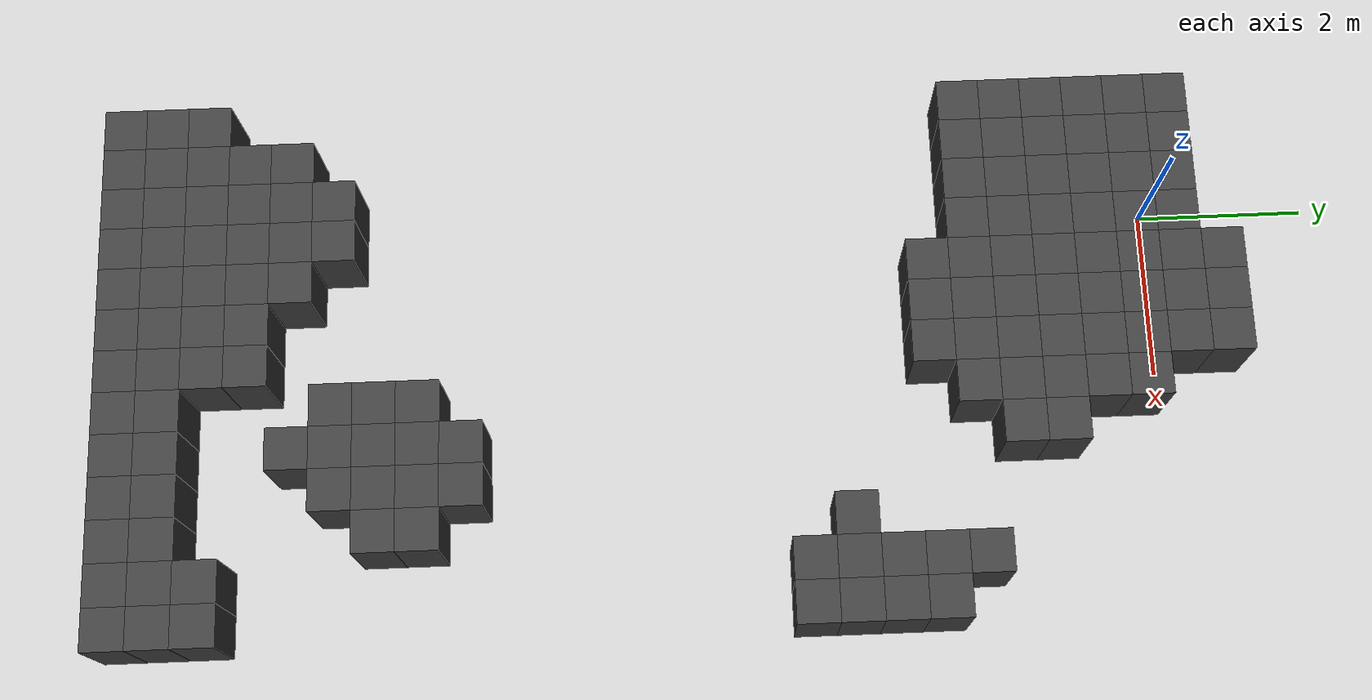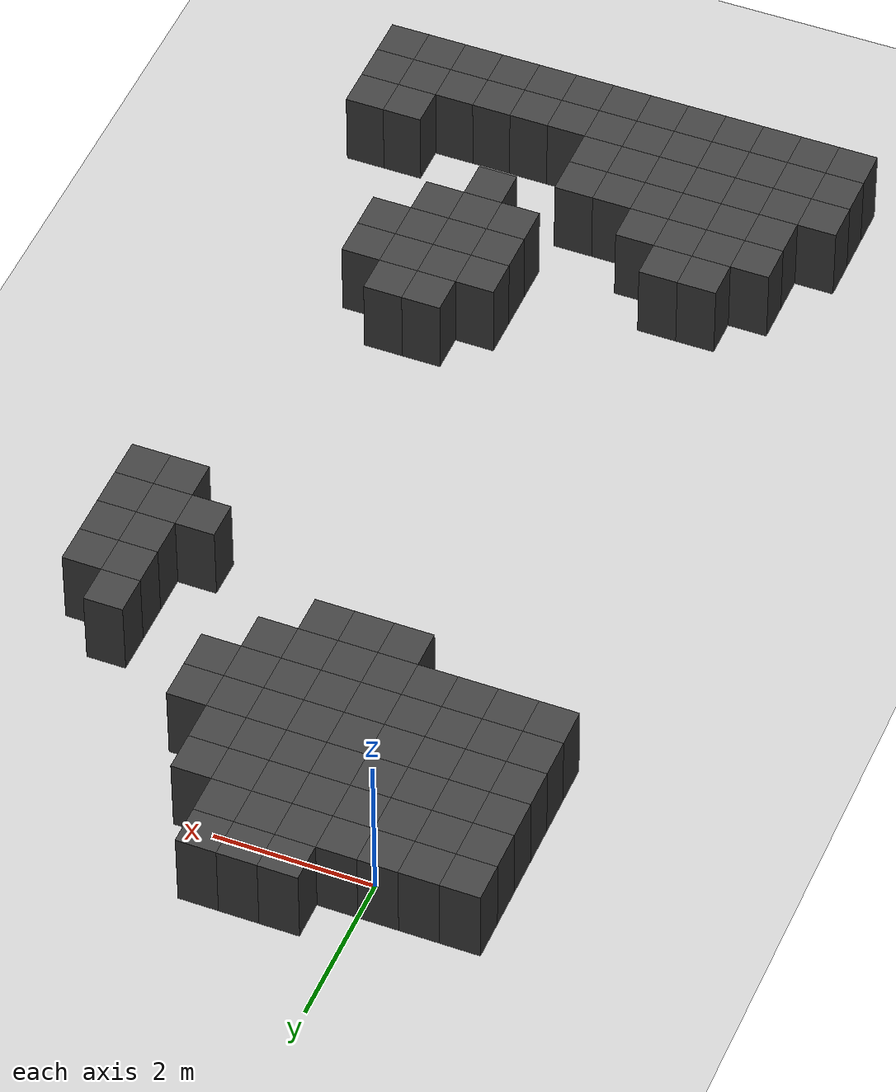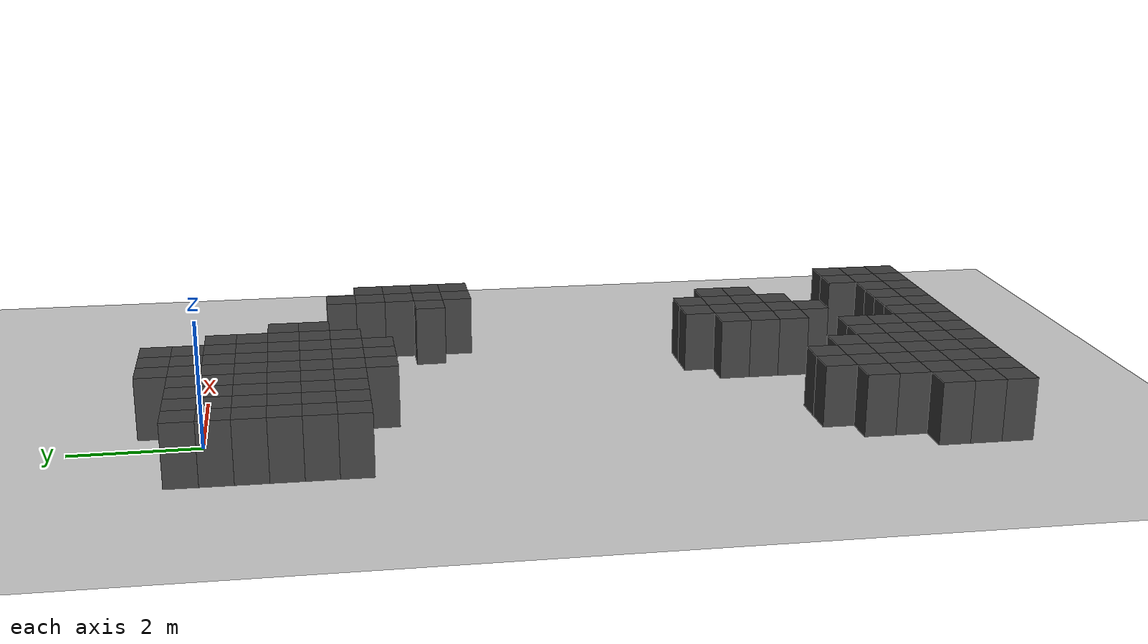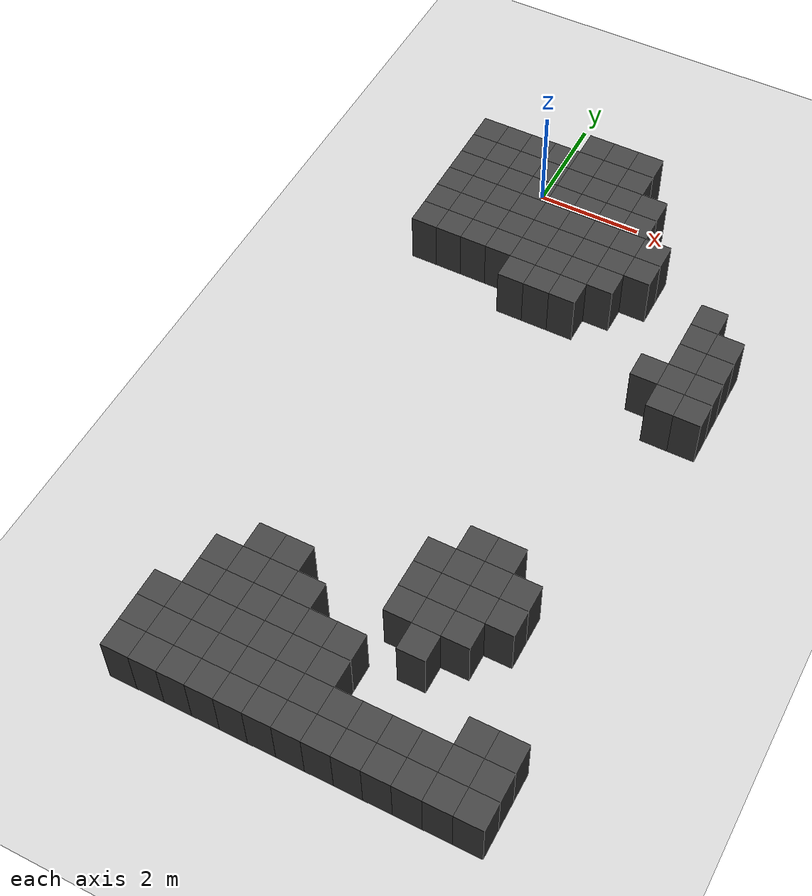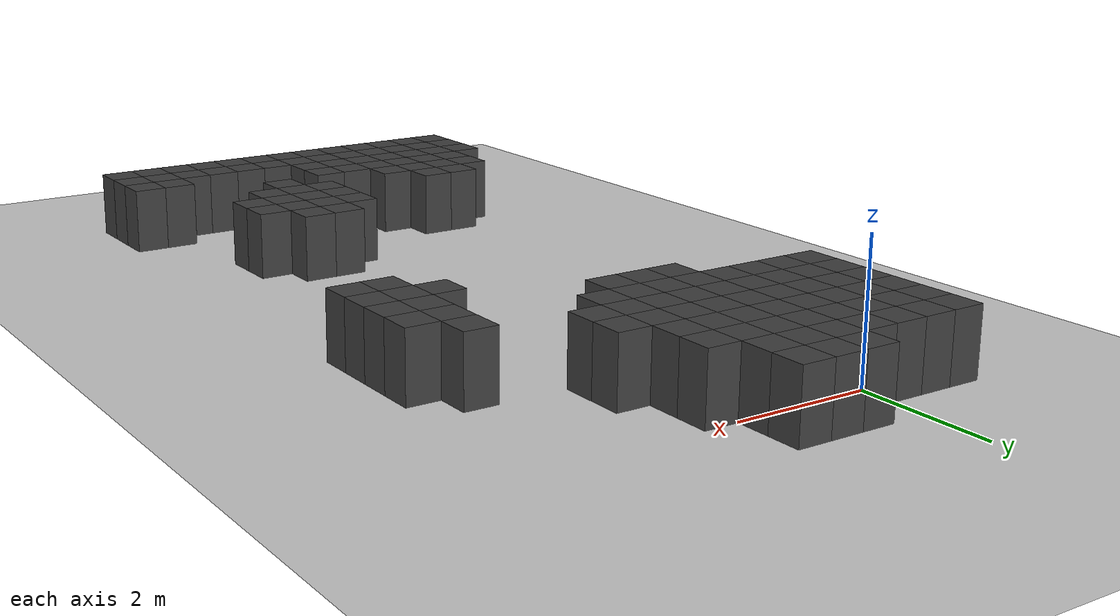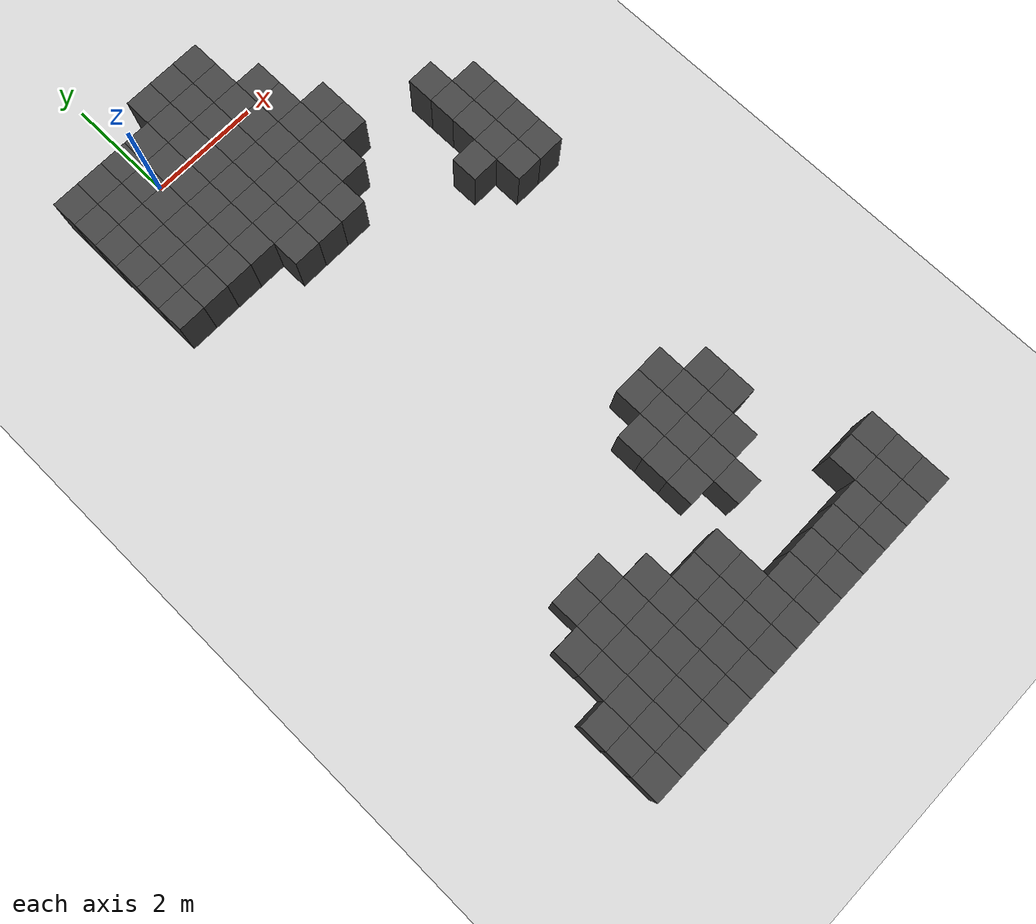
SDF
<sdf version="1.7">
 <world name="map_8658">
  <model name="ground_plane">
   <static>true</static>
   <link name="link">
    <collision name="collision">
     <geometry><plane><normal>0 0 1</normal><size>200 200</size></plane></geometry>
    </collision>
    <visual name="visual">
     <geometry><plane><normal>0 0 1</normal><size>200 200</size></plane></geometry>
     <material><ambient>0.8 0.8 0.8 1</ambient><diffuse>0.8 0.8 0.8 1</diffuse></material>
    </visual>
   </link>
  </model>
  <model name="maze_environment">
   <static>true</static>
   <link name="wall_474">
    <pose>0.750 0.750 0.500 0 0 0</pose>
    <collision name="col"><geometry><box><size>0.5 0.5 1.0</size></box></geometry></collision>
    <visual name="vis">
     <geometry><box><size>0.5 0.5 1.0</size></box></geometry>
     <material><ambient>0.15 0.15 0.15 1</ambient><diffuse>0.25 0.25 0.25 1</diffuse></material>
    </visual>
   </link>
   <link name="wall_475">
    <pose>1.250 0.750 0.500 0 0 0</pose>
    <collision name="col"><geometry><box><size>0.5 0.5 1.0</size></box></geometry></collision>
    <visual name="vis">
     <geometry><box><size>0.5 0.5 1.0</size></box></geometry>
     <material><ambient>0.15 0.15 0.15 1</ambient><diffuse>0.25 0.25 0.25 1</diffuse></material>
    </visual>
   </link>
   <link name="wall_476">
    <pose>1.750 0.750 0.500 0 0 0</pose>
    <collision name="col"><geometry><box><size>0.5 0.5 1.0</size></box></geometry></collision>
    <visual name="vis">
     <geometry><box><size>0.5 0.5 1.0</size></box></geometry>
     <material><ambient>0.15 0.15 0.15 1</ambient><diffuse>0.25 0.25 0.25 1</diffuse></material>
    </visual>
   </link>
   <link name="wall_488">
    <pose>-1.250 0.250 0.500 0 0 0</pose>
    <collision name="col"><geometry><box><size>0.5 0.5 1.0</size></box></geometry></collision>
    <visual name="vis">
     <geometry><box><size>0.5 0.5 1.0</size></box></geometry>
     <material><ambient>0.15 0.15 0.15 1</ambient><diffuse>0.25 0.25 0.25 1</diffuse></material>
    </visual>
   </link>
   <link name="wall_489">
    <pose>-0.750 0.250 0.500 0 0 0</pose>
    <collision name="col"><geometry><box><size>0.5 0.5 1.0</size></box></geometry></collision>
    <visual name="vis">
     <geometry><box><size>0.5 0.5 1.0</size></box></geometry>
     <material><ambient>0.15 0.15 0.15 1</ambient><diffuse>0.25 0.25 0.25 1</diffuse></material>
    </visual>
   </link>
   <link name="wall_490">
    <pose>-0.250 0.250 0.500 0 0 0</pose>
    <collision name="col"><geometry><box><size>0.5 0.5 1.0</size></box></geometry></collision>
    <visual name="vis">
     <geometry><box><size>0.5 0.5 1.0</size></box></geometry>
     <material><ambient>0.15 0.15 0.15 1</ambient><diffuse>0.25 0.25 0.25 1</diffuse></material>
    </visual>
   </link>
   <link name="wall_491">
    <pose>0.250 0.250 0.500 0 0 0</pose>
    <collision name="col"><geometry><box><size>0.5 0.5 1.0</size></box></geometry></collision>
    <visual name="vis">
     <geometry><box><size>0.5 0.5 1.0</size></box></geometry>
     <material><ambient>0.15 0.15 0.15 1</ambient><diffuse>0.25 0.25 0.25 1</diffuse></material>
    </visual>
   </link>
   <link name="wall_492">
    <pose>0.750 0.250 0.500 0 0 0</pose>
    <collision name="col"><geometry><box><size>0.5 0.5 1.0</size></box></geometry></collision>
    <visual name="vis">
     <geometry><box><size>0.5 0.5 1.0</size></box></geometry>
     <material><ambient>0.15 0.15 0.15 1</ambient><diffuse>0.25 0.25 0.25 1</diffuse></material>
    </visual>
   </link>
   <link name="wall_493">
    <pose>1.250 0.250 0.500 0 0 0</pose>
    <collision name="col"><geometry><box><size>0.5 0.5 1.0</size></box></geometry></collision>
    <visual name="vis">
     <geometry><box><size>0.5 0.5 1.0</size></box></geometry>
     <material><ambient>0.15 0.15 0.15 1</ambient><diffuse>0.25 0.25 0.25 1</diffuse></material>
    </visual>
   </link>
   <link name="wall_494">
    <pose>1.750 0.250 0.500 0 0 0</pose>
    <collision name="col"><geometry><box><size>0.5 0.5 1.0</size></box></geometry></collision>
    <visual name="vis">
     <geometry><box><size>0.5 0.5 1.0</size></box></geometry>
     <material><ambient>0.15 0.15 0.15 1</ambient><diffuse>0.25 0.25 0.25 1</diffuse></material>
    </visual>
   </link>
   <link name="wall_505">
    <pose>-1.250 -0.250 0.500 0 0 0</pose>
    <collision name="col"><geometry><box><size>0.5 0.5 1.0</size></box></geometry></collision>
    <visual name="vis">
     <geometry><box><size>0.5 0.5 1.0</size></box></geometry>
     <material><ambient>0.15 0.15 0.15 1</ambient><diffuse>0.25 0.25 0.25 1</diffuse></material>
    </visual>
   </link>
   <link name="wall_506">
    <pose>-0.750 -0.250 0.500 0 0 0</pose>
    <collision name="col"><geometry><box><size>0.5 0.5 1.0</size></box></geometry></collision>
    <visual name="vis">
     <geometry><box><size>0.5 0.5 1.0</size></box></geometry>
     <material><ambient>0.15 0.15 0.15 1</ambient><diffuse>0.25 0.25 0.25 1</diffuse></material>
    </visual>
   </link>
   <link name="wall_507">
    <pose>-0.250 -0.250 0.500 0 0 0</pose>
    <collision name="col"><geometry><box><size>0.5 0.5 1.0</size></box></geometry></collision>
    <visual name="vis">
     <geometry><box><size>0.5 0.5 1.0</size></box></geometry>
     <material><ambient>0.15 0.15 0.15 1</ambient><diffuse>0.25 0.25 0.25 1</diffuse></material>
    </visual>
   </link>
   <link name="wall_508">
    <pose>0.250 -0.250 0.500 0 0 0</pose>
    <collision name="col"><geometry><box><size>0.5 0.5 1.0</size></box></geometry></collision>
    <visual name="vis">
     <geometry><box><size>0.5 0.5 1.0</size></box></geometry>
     <material><ambient>0.15 0.15 0.15 1</ambient><diffuse>0.25 0.25 0.25 1</diffuse></material>
    </visual>
   </link>
   <link name="wall_509">
    <pose>0.750 -0.250 0.500 0 0 0</pose>
    <collision name="col"><geometry><box><size>0.5 0.5 1.0</size></box></geometry></collision>
    <visual name="vis">
     <geometry><box><size>0.5 0.5 1.0</size></box></geometry>
     <material><ambient>0.15 0.15 0.15 1</ambient><diffuse>0.25 0.25 0.25 1</diffuse></material>
    </visual>
   </link>
   <link name="wall_510">
    <pose>1.250 -0.250 0.500 0 0 0</pose>
    <collision name="col"><geometry><box><size>0.5 0.5 1.0</size></box></geometry></collision>
    <visual name="vis">
     <geometry><box><size>0.5 0.5 1.0</size></box></geometry>
     <material><ambient>0.15 0.15 0.15 1</ambient><diffuse>0.25 0.25 0.25 1</diffuse></material>
    </visual>
   </link>
   <link name="wall_511">
    <pose>1.750 -0.250 0.500 0 0 0</pose>
    <collision name="col"><geometry><box><size>0.5 0.5 1.0</size></box></geometry></collision>
    <visual name="vis">
     <geometry><box><size>0.5 0.5 1.0</size></box></geometry>
     <material><ambient>0.15 0.15 0.15 1</ambient><diffuse>0.25 0.25 0.25 1</diffuse></material>
    </visual>
   </link>
   <link name="wall_512">
    <pose>2.250 -0.250 0.500 0 0 0</pose>
    <collision name="col"><geometry><box><size>0.5 0.5 1.0</size></box></geometry></collision>
    <visual name="vis">
     <geometry><box><size>0.5 0.5 1.0</size></box></geometry>
     <material><ambient>0.15 0.15 0.15 1</ambient><diffuse>0.25 0.25 0.25 1</diffuse></material>
    </visual>
   </link>
   <link name="wall_526">
    <pose>-1.250 -0.750 0.500 0 0 0</pose>
    <collision name="col"><geometry><box><size>0.5 0.5 1.0</size></box></geometry></collision>
    <visual name="vis">
     <geometry><box><size>0.5 0.5 1.0</size></box></geometry>
     <material><ambient>0.15 0.15 0.15 1</ambient><diffuse>0.25 0.25 0.25 1</diffuse></material>
    </visual>
   </link>
   <link name="wall_527">
    <pose>-0.750 -0.750 0.500 0 0 0</pose>
    <collision name="col"><geometry><box><size>0.5 0.5 1.0</size></box></geometry></collision>
    <visual name="vis">
     <geometry><box><size>0.5 0.5 1.0</size></box></geometry>
     <material><ambient>0.15 0.15 0.15 1</ambient><diffuse>0.25 0.25 0.25 1</diffuse></material>
    </visual>
   </link>
   <link name="wall_528">
    <pose>-0.250 -0.750 0.500 0 0 0</pose>
    <collision name="col"><geometry><box><size>0.5 0.5 1.0</size></box></geometry></collision>
    <visual name="vis">
     <geometry><box><size>0.5 0.5 1.0</size></box></geometry>
     <material><ambient>0.15 0.15 0.15 1</ambient><diffuse>0.25 0.25 0.25 1</diffuse></material>
    </visual>
   </link>
   <link name="wall_529">
    <pose>0.250 -0.750 0.500 0 0 0</pose>
    <collision name="col"><geometry><box><size>0.5 0.5 1.0</size></box></geometry></collision>
    <visual name="vis">
     <geometry><box><size>0.5 0.5 1.0</size></box></geometry>
     <material><ambient>0.15 0.15 0.15 1</ambient><diffuse>0.25 0.25 0.25 1</diffuse></material>
    </visual>
   </link>
   <link name="wall_530">
    <pose>0.750 -0.750 0.500 0 0 0</pose>
    <collision name="col"><geometry><box><size>0.5 0.5 1.0</size></box></geometry></collision>
    <visual name="vis">
     <geometry><box><size>0.5 0.5 1.0</size></box></geometry>
     <material><ambient>0.15 0.15 0.15 1</ambient><diffuse>0.25 0.25 0.25 1</diffuse></material>
    </visual>
   </link>
   <link name="wall_531">
    <pose>1.250 -0.750 0.500 0 0 0</pose>
    <collision name="col"><geometry><box><size>0.5 0.5 1.0</size></box></geometry></collision>
    <visual name="vis">
     <geometry><box><size>0.5 0.5 1.0</size></box></geometry>
     <material><ambient>0.15 0.15 0.15 1</ambient><diffuse>0.25 0.25 0.25 1</diffuse></material>
    </visual>
   </link>
   <link name="wall_532">
    <pose>1.750 -0.750 0.500 0 0 0</pose>
    <collision name="col"><geometry><box><size>0.5 0.5 1.0</size></box></geometry></collision>
    <visual name="vis">
     <geometry><box><size>0.5 0.5 1.0</size></box></geometry>
     <material><ambient>0.15 0.15 0.15 1</ambient><diffuse>0.25 0.25 0.25 1</diffuse></material>
    </visual>
   </link>
   <link name="wall_533">
    <pose>2.250 -0.750 0.500 0 0 0</pose>
    <collision name="col"><geometry><box><size>0.5 0.5 1.0</size></box></geometry></collision>
    <visual name="vis">
     <geometry><box><size>0.5 0.5 1.0</size></box></geometry>
     <material><ambient>0.15 0.15 0.15 1</ambient><diffuse>0.25 0.25 0.25 1</diffuse></material>
    </visual>
   </link>
   <link name="wall_545">
    <pose>-1.250 -1.250 0.500 0 0 0</pose>
    <collision name="col"><geometry><box><size>0.5 0.5 1.0</size></box></geometry></collision>
    <visual name="vis">
     <geometry><box><size>0.5 0.5 1.0</size></box></geometry>
     <material><ambient>0.15 0.15 0.15 1</ambient><diffuse>0.25 0.25 0.25 1</diffuse></material>
    </visual>
   </link>
   <link name="wall_546">
    <pose>-0.750 -1.250 0.500 0 0 0</pose>
    <collision name="col"><geometry><box><size>0.5 0.5 1.0</size></box></geometry></collision>
    <visual name="vis">
     <geometry><box><size>0.5 0.5 1.0</size></box></geometry>
     <material><ambient>0.15 0.15 0.15 1</ambient><diffuse>0.25 0.25 0.25 1</diffuse></material>
    </visual>
   </link>
   <link name="wall_547">
    <pose>-0.250 -1.250 0.500 0 0 0</pose>
    <collision name="col"><geometry><box><size>0.5 0.5 1.0</size></box></geometry></collision>
    <visual name="vis">
     <geometry><box><size>0.5 0.5 1.0</size></box></geometry>
     <material><ambient>0.15 0.15 0.15 1</ambient><diffuse>0.25 0.25 0.25 1</diffuse></material>
    </visual>
   </link>
   <link name="wall_548">
    <pose>0.250 -1.250 0.500 0 0 0</pose>
    <collision name="col"><geometry><box><size>0.5 0.5 1.0</size></box></geometry></collision>
    <visual name="vis">
     <geometry><box><size>0.5 0.5 1.0</size></box></geometry>
     <material><ambient>0.15 0.15 0.15 1</ambient><diffuse>0.25 0.25 0.25 1</diffuse></material>
    </visual>
   </link>
   <link name="wall_549">
    <pose>0.750 -1.250 0.500 0 0 0</pose>
    <collision name="col"><geometry><box><size>0.5 0.5 1.0</size></box></geometry></collision>
    <visual name="vis">
     <geometry><box><size>0.5 0.5 1.0</size></box></geometry>
     <material><ambient>0.15 0.15 0.15 1</ambient><diffuse>0.25 0.25 0.25 1</diffuse></material>
    </visual>
   </link>
   <link name="wall_550">
    <pose>1.250 -1.250 0.500 0 0 0</pose>
    <collision name="col"><geometry><box><size>0.5 0.5 1.0</size></box></geometry></collision>
    <visual name="vis">
     <geometry><box><size>0.5 0.5 1.0</size></box></geometry>
     <material><ambient>0.15 0.15 0.15 1</ambient><diffuse>0.25 0.25 0.25 1</diffuse></material>
    </visual>
   </link>
   <link name="wall_551">
    <pose>1.750 -1.250 0.500 0 0 0</pose>
    <collision name="col"><geometry><box><size>0.5 0.5 1.0</size></box></geometry></collision>
    <visual name="vis">
     <geometry><box><size>0.5 0.5 1.0</size></box></geometry>
     <material><ambient>0.15 0.15 0.15 1</ambient><diffuse>0.25 0.25 0.25 1</diffuse></material>
    </visual>
   </link>
   <link name="wall_552">
    <pose>2.250 -1.250 0.500 0 0 0</pose>
    <collision name="col"><geometry><box><size>0.5 0.5 1.0</size></box></geometry></collision>
    <visual name="vis">
     <geometry><box><size>0.5 0.5 1.0</size></box></geometry>
     <material><ambient>0.15 0.15 0.15 1</ambient><diffuse>0.25 0.25 0.25 1</diffuse></material>
    </visual>
   </link>
   <link name="wall_553">
    <pose>2.750 -1.250 0.500 0 0 0</pose>
    <collision name="col"><geometry><box><size>0.5 0.5 1.0</size></box></geometry></collision>
    <visual name="vis">
     <geometry><box><size>0.5 0.5 1.0</size></box></geometry>
     <material><ambient>0.15 0.15 0.15 1</ambient><diffuse>0.25 0.25 0.25 1</diffuse></material>
    </visual>
   </link>
   <link name="wall_562">
    <pose>-1.250 -1.750 0.500 0 0 0</pose>
    <collision name="col"><geometry><box><size>0.5 0.5 1.0</size></box></geometry></collision>
    <visual name="vis">
     <geometry><box><size>0.5 0.5 1.0</size></box></geometry>
     <material><ambient>0.15 0.15 0.15 1</ambient><diffuse>0.25 0.25 0.25 1</diffuse></material>
    </visual>
   </link>
   <link name="wall_563">
    <pose>-0.750 -1.750 0.500 0 0 0</pose>
    <collision name="col"><geometry><box><size>0.5 0.5 1.0</size></box></geometry></collision>
    <visual name="vis">
     <geometry><box><size>0.5 0.5 1.0</size></box></geometry>
     <material><ambient>0.15 0.15 0.15 1</ambient><diffuse>0.25 0.25 0.25 1</diffuse></material>
    </visual>
   </link>
   <link name="wall_564">
    <pose>-0.250 -1.750 0.500 0 0 0</pose>
    <collision name="col"><geometry><box><size>0.5 0.5 1.0</size></box></geometry></collision>
    <visual name="vis">
     <geometry><box><size>0.5 0.5 1.0</size></box></geometry>
     <material><ambient>0.15 0.15 0.15 1</ambient><diffuse>0.25 0.25 0.25 1</diffuse></material>
    </visual>
   </link>
   <link name="wall_565">
    <pose>0.250 -1.750 0.500 0 0 0</pose>
    <collision name="col"><geometry><box><size>0.5 0.5 1.0</size></box></geometry></collision>
    <visual name="vis">
     <geometry><box><size>0.5 0.5 1.0</size></box></geometry>
     <material><ambient>0.15 0.15 0.15 1</ambient><diffuse>0.25 0.25 0.25 1</diffuse></material>
    </visual>
   </link>
   <link name="wall_566">
    <pose>0.750 -1.750 0.500 0 0 0</pose>
    <collision name="col"><geometry><box><size>0.5 0.5 1.0</size></box></geometry></collision>
    <visual name="vis">
     <geometry><box><size>0.5 0.5 1.0</size></box></geometry>
     <material><ambient>0.15 0.15 0.15 1</ambient><diffuse>0.25 0.25 0.25 1</diffuse></material>
    </visual>
   </link>
   <link name="wall_567">
    <pose>1.250 -1.750 0.500 0 0 0</pose>
    <collision name="col"><geometry><box><size>0.5 0.5 1.0</size></box></geometry></collision>
    <visual name="vis">
     <geometry><box><size>0.5 0.5 1.0</size></box></geometry>
     <material><ambient>0.15 0.15 0.15 1</ambient><diffuse>0.25 0.25 0.25 1</diffuse></material>
    </visual>
   </link>
   <link name="wall_568">
    <pose>1.750 -1.750 0.500 0 0 0</pose>
    <collision name="col"><geometry><box><size>0.5 0.5 1.0</size></box></geometry></collision>
    <visual name="vis">
     <geometry><box><size>0.5 0.5 1.0</size></box></geometry>
     <material><ambient>0.15 0.15 0.15 1</ambient><diffuse>0.25 0.25 0.25 1</diffuse></material>
    </visual>
   </link>
   <link name="wall_569">
    <pose>2.250 -1.750 0.500 0 0 0</pose>
    <collision name="col"><geometry><box><size>0.5 0.5 1.0</size></box></geometry></collision>
    <visual name="vis">
     <geometry><box><size>0.5 0.5 1.0</size></box></geometry>
     <material><ambient>0.15 0.15 0.15 1</ambient><diffuse>0.25 0.25 0.25 1</diffuse></material>
    </visual>
   </link>
   <link name="wall_570">
    <pose>2.750 -1.750 0.500 0 0 0</pose>
    <collision name="col"><geometry><box><size>0.5 0.5 1.0</size></box></geometry></collision>
    <visual name="vis">
     <geometry><box><size>0.5 0.5 1.0</size></box></geometry>
     <material><ambient>0.15 0.15 0.15 1</ambient><diffuse>0.25 0.25 0.25 1</diffuse></material>
    </visual>
   </link>
   <link name="wall_582">
    <pose>-1.250 -2.250 0.500 0 0 0</pose>
    <collision name="col"><geometry><box><size>0.5 0.5 1.0</size></box></geometry></collision>
    <visual name="vis">
     <geometry><box><size>0.5 0.5 1.0</size></box></geometry>
     <material><ambient>0.15 0.15 0.15 1</ambient><diffuse>0.25 0.25 0.25 1</diffuse></material>
    </visual>
   </link>
   <link name="wall_583">
    <pose>-0.750 -2.250 0.500 0 0 0</pose>
    <collision name="col"><geometry><box><size>0.5 0.5 1.0</size></box></geometry></collision>
    <visual name="vis">
     <geometry><box><size>0.5 0.5 1.0</size></box></geometry>
     <material><ambient>0.15 0.15 0.15 1</ambient><diffuse>0.25 0.25 0.25 1</diffuse></material>
    </visual>
   </link>
   <link name="wall_584">
    <pose>-0.250 -2.250 0.500 0 0 0</pose>
    <collision name="col"><geometry><box><size>0.5 0.5 1.0</size></box></geometry></collision>
    <visual name="vis">
     <geometry><box><size>0.5 0.5 1.0</size></box></geometry>
     <material><ambient>0.15 0.15 0.15 1</ambient><diffuse>0.25 0.25 0.25 1</diffuse></material>
    </visual>
   </link>
   <link name="wall_585">
    <pose>0.250 -2.250 0.500 0 0 0</pose>
    <collision name="col"><geometry><box><size>0.5 0.5 1.0</size></box></geometry></collision>
    <visual name="vis">
     <geometry><box><size>0.5 0.5 1.0</size></box></geometry>
     <material><ambient>0.15 0.15 0.15 1</ambient><diffuse>0.25 0.25 0.25 1</diffuse></material>
    </visual>
   </link>
   <link name="wall_586">
    <pose>0.750 -2.250 0.500 0 0 0</pose>
    <collision name="col"><geometry><box><size>0.5 0.5 1.0</size></box></geometry></collision>
    <visual name="vis">
     <geometry><box><size>0.5 0.5 1.0</size></box></geometry>
     <material><ambient>0.15 0.15 0.15 1</ambient><diffuse>0.25 0.25 0.25 1</diffuse></material>
    </visual>
   </link>
   <link name="wall_587">
    <pose>1.250 -2.250 0.500 0 0 0</pose>
    <collision name="col"><geometry><box><size>0.5 0.5 1.0</size></box></geometry></collision>
    <visual name="vis">
     <geometry><box><size>0.5 0.5 1.0</size></box></geometry>
     <material><ambient>0.15 0.15 0.15 1</ambient><diffuse>0.25 0.25 0.25 1</diffuse></material>
    </visual>
   </link>
   <link name="wall_588">
    <pose>1.750 -2.250 0.500 0 0 0</pose>
    <collision name="col"><geometry><box><size>0.5 0.5 1.0</size></box></geometry></collision>
    <visual name="vis">
     <geometry><box><size>0.5 0.5 1.0</size></box></geometry>
     <material><ambient>0.15 0.15 0.15 1</ambient><diffuse>0.25 0.25 0.25 1</diffuse></material>
    </visual>
   </link>
   <link name="wall_589">
    <pose>2.250 -2.250 0.500 0 0 0</pose>
    <collision name="col"><geometry><box><size>0.5 0.5 1.0</size></box></geometry></collision>
    <visual name="vis">
     <geometry><box><size>0.5 0.5 1.0</size></box></geometry>
     <material><ambient>0.15 0.15 0.15 1</ambient><diffuse>0.25 0.25 0.25 1</diffuse></material>
    </visual>
   </link>
   <link name="wall_590">
    <pose>4.250 -2.250 0.500 0 0 0</pose>
    <collision name="col"><geometry><box><size>0.5 0.5 1.0</size></box></geometry></collision>
    <visual name="vis">
     <geometry><box><size>0.5 0.5 1.0</size></box></geometry>
     <material><ambient>0.15 0.15 0.15 1</ambient><diffuse>0.25 0.25 0.25 1</diffuse></material>
    </visual>
   </link>
   <link name="wall_605">
    <pose>0.750 -2.750 0.500 0 0 0</pose>
    <collision name="col"><geometry><box><size>0.5 0.5 1.0</size></box></geometry></collision>
    <visual name="vis">
     <geometry><box><size>0.5 0.5 1.0</size></box></geometry>
     <material><ambient>0.15 0.15 0.15 1</ambient><diffuse>0.25 0.25 0.25 1</diffuse></material>
    </visual>
   </link>
   <link name="wall_606">
    <pose>1.250 -2.750 0.500 0 0 0</pose>
    <collision name="col"><geometry><box><size>0.5 0.5 1.0</size></box></geometry></collision>
    <visual name="vis">
     <geometry><box><size>0.5 0.5 1.0</size></box></geometry>
     <material><ambient>0.15 0.15 0.15 1</ambient><diffuse>0.25 0.25 0.25 1</diffuse></material>
    </visual>
   </link>
   <link name="wall_607">
    <pose>1.750 -2.750 0.500 0 0 0</pose>
    <collision name="col"><geometry><box><size>0.5 0.5 1.0</size></box></geometry></collision>
    <visual name="vis">
     <geometry><box><size>0.5 0.5 1.0</size></box></geometry>
     <material><ambient>0.15 0.15 0.15 1</ambient><diffuse>0.25 0.25 0.25 1</diffuse></material>
    </visual>
   </link>
   <link name="wall_608">
    <pose>4.250 -2.750 0.500 0 0 0</pose>
    <collision name="col"><geometry><box><size>0.5 0.5 1.0</size></box></geometry></collision>
    <visual name="vis">
     <geometry><box><size>0.5 0.5 1.0</size></box></geometry>
     <material><ambient>0.15 0.15 0.15 1</ambient><diffuse>0.25 0.25 0.25 1</diffuse></material>
    </visual>
   </link>
   <link name="wall_609">
    <pose>4.750 -2.750 0.500 0 0 0</pose>
    <collision name="col"><geometry><box><size>0.5 0.5 1.0</size></box></geometry></collision>
    <visual name="vis">
     <geometry><box><size>0.5 0.5 1.0</size></box></geometry>
     <material><ambient>0.15 0.15 0.15 1</ambient><diffuse>0.25 0.25 0.25 1</diffuse></material>
    </visual>
   </link>
   <link name="wall_626">
    <pose>4.250 -3.250 0.500 0 0 0</pose>
    <collision name="col"><geometry><box><size>0.5 0.5 1.0</size></box></geometry></collision>
    <visual name="vis">
     <geometry><box><size>0.5 0.5 1.0</size></box></geometry>
     <material><ambient>0.15 0.15 0.15 1</ambient><diffuse>0.25 0.25 0.25 1</diffuse></material>
    </visual>
   </link>
   <link name="wall_627">
    <pose>4.750 -3.250 0.500 0 0 0</pose>
    <collision name="col"><geometry><box><size>0.5 0.5 1.0</size></box></geometry></collision>
    <visual name="vis">
     <geometry><box><size>0.5 0.5 1.0</size></box></geometry>
     <material><ambient>0.15 0.15 0.15 1</ambient><diffuse>0.25 0.25 0.25 1</diffuse></material>
    </visual>
   </link>
   <link name="wall_643">
    <pose>3.750 -3.750 0.500 0 0 0</pose>
    <collision name="col"><geometry><box><size>0.5 0.5 1.0</size></box></geometry></collision>
    <visual name="vis">
     <geometry><box><size>0.5 0.5 1.0</size></box></geometry>
     <material><ambient>0.15 0.15 0.15 1</ambient><diffuse>0.25 0.25 0.25 1</diffuse></material>
    </visual>
   </link>
   <link name="wall_644">
    <pose>4.250 -3.750 0.500 0 0 0</pose>
    <collision name="col"><geometry><box><size>0.5 0.5 1.0</size></box></geometry></collision>
    <visual name="vis">
     <geometry><box><size>0.5 0.5 1.0</size></box></geometry>
     <material><ambient>0.15 0.15 0.15 1</ambient><diffuse>0.25 0.25 0.25 1</diffuse></material>
    </visual>
   </link>
   <link name="wall_645">
    <pose>4.750 -3.750 0.500 0 0 0</pose>
    <collision name="col"><geometry><box><size>0.5 0.5 1.0</size></box></geometry></collision>
    <visual name="vis">
     <geometry><box><size>0.5 0.5 1.0</size></box></geometry>
     <material><ambient>0.15 0.15 0.15 1</ambient><diffuse>0.25 0.25 0.25 1</diffuse></material>
    </visual>
   </link>
   <link name="wall_662">
    <pose>4.250 -4.250 0.500 0 0 0</pose>
    <collision name="col"><geometry><box><size>0.5 0.5 1.0</size></box></geometry></collision>
    <visual name="vis">
     <geometry><box><size>0.5 0.5 1.0</size></box></geometry>
     <material><ambient>0.15 0.15 0.15 1</ambient><diffuse>0.25 0.25 0.25 1</diffuse></material>
    </visual>
   </link>
   <link name="wall_663">
    <pose>4.750 -4.250 0.500 0 0 0</pose>
    <collision name="col"><geometry><box><size>0.5 0.5 1.0</size></box></geometry></collision>
    <visual name="vis">
     <geometry><box><size>0.5 0.5 1.0</size></box></geometry>
     <material><ambient>0.15 0.15 0.15 1</ambient><diffuse>0.25 0.25 0.25 1</diffuse></material>
    </visual>
   </link>
   <link name="wall_732">
    <pose>2.750 -8.250 0.500 0 0 0</pose>
    <collision name="col"><geometry><box><size>0.5 0.5 1.0</size></box></geometry></collision>
    <visual name="vis">
     <geometry><box><size>0.5 0.5 1.0</size></box></geometry>
     <material><ambient>0.15 0.15 0.15 1</ambient><diffuse>0.25 0.25 0.25 1</diffuse></material>
    </visual>
   </link>
   <link name="wall_733">
    <pose>3.250 -8.250 0.500 0 0 0</pose>
    <collision name="col"><geometry><box><size>0.5 0.5 1.0</size></box></geometry></collision>
    <visual name="vis">
     <geometry><box><size>0.5 0.5 1.0</size></box></geometry>
     <material><ambient>0.15 0.15 0.15 1</ambient><diffuse>0.25 0.25 0.25 1</diffuse></material>
    </visual>
   </link>
   <link name="wall_752">
    <pose>2.250 -8.750 0.500 0 0 0</pose>
    <collision name="col"><geometry><box><size>0.5 0.5 1.0</size></box></geometry></collision>
    <visual name="vis">
     <geometry><box><size>0.5 0.5 1.0</size></box></geometry>
     <material><ambient>0.15 0.15 0.15 1</ambient><diffuse>0.25 0.25 0.25 1</diffuse></material>
    </visual>
   </link>
   <link name="wall_753">
    <pose>2.750 -8.750 0.500 0 0 0</pose>
    <collision name="col"><geometry><box><size>0.5 0.5 1.0</size></box></geometry></collision>
    <visual name="vis">
     <geometry><box><size>0.5 0.5 1.0</size></box></geometry>
     <material><ambient>0.15 0.15 0.15 1</ambient><diffuse>0.25 0.25 0.25 1</diffuse></material>
    </visual>
   </link>
   <link name="wall_754">
    <pose>3.250 -8.750 0.500 0 0 0</pose>
    <collision name="col"><geometry><box><size>0.5 0.5 1.0</size></box></geometry></collision>
    <visual name="vis">
     <geometry><box><size>0.5 0.5 1.0</size></box></geometry>
     <material><ambient>0.15 0.15 0.15 1</ambient><diffuse>0.25 0.25 0.25 1</diffuse></material>
    </visual>
   </link>
   <link name="wall_755">
    <pose>3.750 -8.750 0.500 0 0 0</pose>
    <collision name="col"><geometry><box><size>0.5 0.5 1.0</size></box></geometry></collision>
    <visual name="vis">
     <geometry><box><size>0.5 0.5 1.0</size></box></geometry>
     <material><ambient>0.15 0.15 0.15 1</ambient><diffuse>0.25 0.25 0.25 1</diffuse></material>
    </visual>
   </link>
   <link name="wall_778">
    <pose>2.250 -9.250 0.500 0 0 0</pose>
    <collision name="col"><geometry><box><size>0.5 0.5 1.0</size></box></geometry></collision>
    <visual name="vis">
     <geometry><box><size>0.5 0.5 1.0</size></box></geometry>
     <material><ambient>0.15 0.15 0.15 1</ambient><diffuse>0.25 0.25 0.25 1</diffuse></material>
    </visual>
   </link>
   <link name="wall_779">
    <pose>2.750 -9.250 0.500 0 0 0</pose>
    <collision name="col"><geometry><box><size>0.5 0.5 1.0</size></box></geometry></collision>
    <visual name="vis">
     <geometry><box><size>0.5 0.5 1.0</size></box></geometry>
     <material><ambient>0.15 0.15 0.15 1</ambient><diffuse>0.25 0.25 0.25 1</diffuse></material>
    </visual>
   </link>
   <link name="wall_780">
    <pose>3.250 -9.250 0.500 0 0 0</pose>
    <collision name="col"><geometry><box><size>0.5 0.5 1.0</size></box></geometry></collision>
    <visual name="vis">
     <geometry><box><size>0.5 0.5 1.0</size></box></geometry>
     <material><ambient>0.15 0.15 0.15 1</ambient><diffuse>0.25 0.25 0.25 1</diffuse></material>
    </visual>
   </link>
   <link name="wall_781">
    <pose>3.750 -9.250 0.500 0 0 0</pose>
    <collision name="col"><geometry><box><size>0.5 0.5 1.0</size></box></geometry></collision>
    <visual name="vis">
     <geometry><box><size>0.5 0.5 1.0</size></box></geometry>
     <material><ambient>0.15 0.15 0.15 1</ambient><diffuse>0.25 0.25 0.25 1</diffuse></material>
    </visual>
   </link>
   <link name="wall_804">
    <pose>-0.250 -9.750 0.500 0 0 0</pose>
    <collision name="col"><geometry><box><size>0.5 0.5 1.0</size></box></geometry></collision>
    <visual name="vis">
     <geometry><box><size>0.5 0.5 1.0</size></box></geometry>
     <material><ambient>0.15 0.15 0.15 1</ambient><diffuse>0.25 0.25 0.25 1</diffuse></material>
    </visual>
   </link>
   <link name="wall_805">
    <pose>0.250 -9.750 0.500 0 0 0</pose>
    <collision name="col"><geometry><box><size>0.5 0.5 1.0</size></box></geometry></collision>
    <visual name="vis">
     <geometry><box><size>0.5 0.5 1.0</size></box></geometry>
     <material><ambient>0.15 0.15 0.15 1</ambient><diffuse>0.25 0.25 0.25 1</diffuse></material>
    </visual>
   </link>
   <link name="wall_806">
    <pose>2.250 -9.750 0.500 0 0 0</pose>
    <collision name="col"><geometry><box><size>0.5 0.5 1.0</size></box></geometry></collision>
    <visual name="vis">
     <geometry><box><size>0.5 0.5 1.0</size></box></geometry>
     <material><ambient>0.15 0.15 0.15 1</ambient><diffuse>0.25 0.25 0.25 1</diffuse></material>
    </visual>
   </link>
   <link name="wall_807">
    <pose>2.750 -9.750 0.500 0 0 0</pose>
    <collision name="col"><geometry><box><size>0.5 0.5 1.0</size></box></geometry></collision>
    <visual name="vis">
     <geometry><box><size>0.5 0.5 1.0</size></box></geometry>
     <material><ambient>0.15 0.15 0.15 1</ambient><diffuse>0.25 0.25 0.25 1</diffuse></material>
    </visual>
   </link>
   <link name="wall_808">
    <pose>3.250 -9.750 0.500 0 0 0</pose>
    <collision name="col"><geometry><box><size>0.5 0.5 1.0</size></box></geometry></collision>
    <visual name="vis">
     <geometry><box><size>0.5 0.5 1.0</size></box></geometry>
     <material><ambient>0.15 0.15 0.15 1</ambient><diffuse>0.25 0.25 0.25 1</diffuse></material>
    </visual>
   </link>
   <link name="wall_832">
    <pose>-0.750 -10.250 0.500 0 0 0</pose>
    <collision name="col"><geometry><box><size>0.5 0.5 1.0</size></box></geometry></collision>
    <visual name="vis">
     <geometry><box><size>0.5 0.5 1.0</size></box></geometry>
     <material><ambient>0.15 0.15 0.15 1</ambient><diffuse>0.25 0.25 0.25 1</diffuse></material>
    </visual>
   </link>
   <link name="wall_833">
    <pose>-0.250 -10.250 0.500 0 0 0</pose>
    <collision name="col"><geometry><box><size>0.5 0.5 1.0</size></box></geometry></collision>
    <visual name="vis">
     <geometry><box><size>0.5 0.5 1.0</size></box></geometry>
     <material><ambient>0.15 0.15 0.15 1</ambient><diffuse>0.25 0.25 0.25 1</diffuse></material>
    </visual>
   </link>
   <link name="wall_834">
    <pose>0.250 -10.250 0.500 0 0 0</pose>
    <collision name="col"><geometry><box><size>0.5 0.5 1.0</size></box></geometry></collision>
    <visual name="vis">
     <geometry><box><size>0.5 0.5 1.0</size></box></geometry>
     <material><ambient>0.15 0.15 0.15 1</ambient><diffuse>0.25 0.25 0.25 1</diffuse></material>
    </visual>
   </link>
   <link name="wall_835">
    <pose>0.750 -10.250 0.500 0 0 0</pose>
    <collision name="col"><geometry><box><size>0.5 0.5 1.0</size></box></geometry></collision>
    <visual name="vis">
     <geometry><box><size>0.5 0.5 1.0</size></box></geometry>
     <material><ambient>0.15 0.15 0.15 1</ambient><diffuse>0.25 0.25 0.25 1</diffuse></material>
    </visual>
   </link>
   <link name="wall_836">
    <pose>2.750 -10.250 0.500 0 0 0</pose>
    <collision name="col"><geometry><box><size>0.5 0.5 1.0</size></box></geometry></collision>
    <visual name="vis">
     <geometry><box><size>0.5 0.5 1.0</size></box></geometry>
     <material><ambient>0.15 0.15 0.15 1</ambient><diffuse>0.25 0.25 0.25 1</diffuse></material>
    </visual>
   </link>
   <link name="wall_862">
    <pose>-0.750 -10.750 0.500 0 0 0</pose>
    <collision name="col"><geometry><box><size>0.5 0.5 1.0</size></box></geometry></collision>
    <visual name="vis">
     <geometry><box><size>0.5 0.5 1.0</size></box></geometry>
     <material><ambient>0.15 0.15 0.15 1</ambient><diffuse>0.25 0.25 0.25 1</diffuse></material>
    </visual>
   </link>
   <link name="wall_863">
    <pose>-0.250 -10.750 0.500 0 0 0</pose>
    <collision name="col"><geometry><box><size>0.5 0.5 1.0</size></box></geometry></collision>
    <visual name="vis">
     <geometry><box><size>0.5 0.5 1.0</size></box></geometry>
     <material><ambient>0.15 0.15 0.15 1</ambient><diffuse>0.25 0.25 0.25 1</diffuse></material>
    </visual>
   </link>
   <link name="wall_864">
    <pose>0.250 -10.750 0.500 0 0 0</pose>
    <collision name="col"><geometry><box><size>0.5 0.5 1.0</size></box></geometry></collision>
    <visual name="vis">
     <geometry><box><size>0.5 0.5 1.0</size></box></geometry>
     <material><ambient>0.15 0.15 0.15 1</ambient><diffuse>0.25 0.25 0.25 1</diffuse></material>
    </visual>
   </link>
   <link name="wall_865">
    <pose>0.750 -10.750 0.500 0 0 0</pose>
    <collision name="col"><geometry><box><size>0.5 0.5 1.0</size></box></geometry></collision>
    <visual name="vis">
     <geometry><box><size>0.5 0.5 1.0</size></box></geometry>
     <material><ambient>0.15 0.15 0.15 1</ambient><diffuse>0.25 0.25 0.25 1</diffuse></material>
    </visual>
   </link>
   <link name="wall_866">
    <pose>1.250 -10.750 0.500 0 0 0</pose>
    <collision name="col"><geometry><box><size>0.5 0.5 1.0</size></box></geometry></collision>
    <visual name="vis">
     <geometry><box><size>0.5 0.5 1.0</size></box></geometry>
     <material><ambient>0.15 0.15 0.15 1</ambient><diffuse>0.25 0.25 0.25 1</diffuse></material>
    </visual>
   </link>
   <link name="wall_867">
    <pose>1.750 -10.750 0.500 0 0 0</pose>
    <collision name="col"><geometry><box><size>0.5 0.5 1.0</size></box></geometry></collision>
    <visual name="vis">
     <geometry><box><size>0.5 0.5 1.0</size></box></geometry>
     <material><ambient>0.15 0.15 0.15 1</ambient><diffuse>0.25 0.25 0.25 1</diffuse></material>
    </visual>
   </link>
   <link name="wall_895">
    <pose>-1.250 -11.250 0.500 0 0 0</pose>
    <collision name="col"><geometry><box><size>0.5 0.5 1.0</size></box></geometry></collision>
    <visual name="vis">
     <geometry><box><size>0.5 0.5 1.0</size></box></geometry>
     <material><ambient>0.15 0.15 0.15 1</ambient><diffuse>0.25 0.25 0.25 1</diffuse></material>
    </visual>
   </link>
   <link name="wall_896">
    <pose>-0.750 -11.250 0.500 0 0 0</pose>
    <collision name="col"><geometry><box><size>0.5 0.5 1.0</size></box></geometry></collision>
    <visual name="vis">
     <geometry><box><size>0.5 0.5 1.0</size></box></geometry>
     <material><ambient>0.15 0.15 0.15 1</ambient><diffuse>0.25 0.25 0.25 1</diffuse></material>
    </visual>
   </link>
   <link name="wall_897">
    <pose>-0.250 -11.250 0.500 0 0 0</pose>
    <collision name="col"><geometry><box><size>0.5 0.5 1.0</size></box></geometry></collision>
    <visual name="vis">
     <geometry><box><size>0.5 0.5 1.0</size></box></geometry>
     <material><ambient>0.15 0.15 0.15 1</ambient><diffuse>0.25 0.25 0.25 1</diffuse></material>
    </visual>
   </link>
   <link name="wall_898">
    <pose>0.250 -11.250 0.500 0 0 0</pose>
    <collision name="col"><geometry><box><size>0.5 0.5 1.0</size></box></geometry></collision>
    <visual name="vis">
     <geometry><box><size>0.5 0.5 1.0</size></box></geometry>
     <material><ambient>0.15 0.15 0.15 1</ambient><diffuse>0.25 0.25 0.25 1</diffuse></material>
    </visual>
   </link>
   <link name="wall_899">
    <pose>0.750 -11.250 0.500 0 0 0</pose>
    <collision name="col"><geometry><box><size>0.5 0.5 1.0</size></box></geometry></collision>
    <visual name="vis">
     <geometry><box><size>0.5 0.5 1.0</size></box></geometry>
     <material><ambient>0.15 0.15 0.15 1</ambient><diffuse>0.25 0.25 0.25 1</diffuse></material>
    </visual>
   </link>
   <link name="wall_900">
    <pose>1.250 -11.250 0.500 0 0 0</pose>
    <collision name="col"><geometry><box><size>0.5 0.5 1.0</size></box></geometry></collision>
    <visual name="vis">
     <geometry><box><size>0.5 0.5 1.0</size></box></geometry>
     <material><ambient>0.15 0.15 0.15 1</ambient><diffuse>0.25 0.25 0.25 1</diffuse></material>
    </visual>
   </link>
   <link name="wall_901">
    <pose>1.750 -11.250 0.500 0 0 0</pose>
    <collision name="col"><geometry><box><size>0.5 0.5 1.0</size></box></geometry></collision>
    <visual name="vis">
     <geometry><box><size>0.5 0.5 1.0</size></box></geometry>
     <material><ambient>0.15 0.15 0.15 1</ambient><diffuse>0.25 0.25 0.25 1</diffuse></material>
    </visual>
   </link>
   <link name="wall_902">
    <pose>4.250 -11.250 0.500 0 0 0</pose>
    <collision name="col"><geometry><box><size>0.5 0.5 1.0</size></box></geometry></collision>
    <visual name="vis">
     <geometry><box><size>0.5 0.5 1.0</size></box></geometry>
     <material><ambient>0.15 0.15 0.15 1</ambient><diffuse>0.25 0.25 0.25 1</diffuse></material>
    </visual>
   </link>
   <link name="wall_903">
    <pose>4.750 -11.250 0.500 0 0 0</pose>
    <collision name="col"><geometry><box><size>0.5 0.5 1.0</size></box></geometry></collision>
    <visual name="vis">
     <geometry><box><size>0.5 0.5 1.0</size></box></geometry>
     <material><ambient>0.15 0.15 0.15 1</ambient><diffuse>0.25 0.25 0.25 1</diffuse></material>
    </visual>
   </link>
   <link name="wall_933">
    <pose>-1.250 -11.750 0.500 0 0 0</pose>
    <collision name="col"><geometry><box><size>0.5 0.5 1.0</size></box></geometry></collision>
    <visual name="vis">
     <geometry><box><size>0.5 0.5 1.0</size></box></geometry>
     <material><ambient>0.15 0.15 0.15 1</ambient><diffuse>0.25 0.25 0.25 1</diffuse></material>
    </visual>
   </link>
   <link name="wall_934">
    <pose>-0.750 -11.750 0.500 0 0 0</pose>
    <collision name="col"><geometry><box><size>0.5 0.5 1.0</size></box></geometry></collision>
    <visual name="vis">
     <geometry><box><size>0.5 0.5 1.0</size></box></geometry>
     <material><ambient>0.15 0.15 0.15 1</ambient><diffuse>0.25 0.25 0.25 1</diffuse></material>
    </visual>
   </link>
   <link name="wall_935">
    <pose>-0.250 -11.750 0.500 0 0 0</pose>
    <collision name="col"><geometry><box><size>0.5 0.5 1.0</size></box></geometry></collision>
    <visual name="vis">
     <geometry><box><size>0.5 0.5 1.0</size></box></geometry>
     <material><ambient>0.15 0.15 0.15 1</ambient><diffuse>0.25 0.25 0.25 1</diffuse></material>
    </visual>
   </link>
   <link name="wall_936">
    <pose>0.250 -11.750 0.500 0 0 0</pose>
    <collision name="col"><geometry><box><size>0.5 0.5 1.0</size></box></geometry></collision>
    <visual name="vis">
     <geometry><box><size>0.5 0.5 1.0</size></box></geometry>
     <material><ambient>0.15 0.15 0.15 1</ambient><diffuse>0.25 0.25 0.25 1</diffuse></material>
    </visual>
   </link>
   <link name="wall_937">
    <pose>0.750 -11.750 0.500 0 0 0</pose>
    <collision name="col"><geometry><box><size>0.5 0.5 1.0</size></box></geometry></collision>
    <visual name="vis">
     <geometry><box><size>0.5 0.5 1.0</size></box></geometry>
     <material><ambient>0.15 0.15 0.15 1</ambient><diffuse>0.25 0.25 0.25 1</diffuse></material>
    </visual>
   </link>
   <link name="wall_938">
    <pose>1.250 -11.750 0.500 0 0 0</pose>
    <collision name="col"><geometry><box><size>0.5 0.5 1.0</size></box></geometry></collision>
    <visual name="vis">
     <geometry><box><size>0.5 0.5 1.0</size></box></geometry>
     <material><ambient>0.15 0.15 0.15 1</ambient><diffuse>0.25 0.25 0.25 1</diffuse></material>
    </visual>
   </link>
   <link name="wall_939">
    <pose>1.750 -11.750 0.500 0 0 0</pose>
    <collision name="col"><geometry><box><size>0.5 0.5 1.0</size></box></geometry></collision>
    <visual name="vis">
     <geometry><box><size>0.5 0.5 1.0</size></box></geometry>
     <material><ambient>0.15 0.15 0.15 1</ambient><diffuse>0.25 0.25 0.25 1</diffuse></material>
    </visual>
   </link>
   <link name="wall_940">
    <pose>2.250 -11.750 0.500 0 0 0</pose>
    <collision name="col"><geometry><box><size>0.5 0.5 1.0</size></box></geometry></collision>
    <visual name="vis">
     <geometry><box><size>0.5 0.5 1.0</size></box></geometry>
     <material><ambient>0.15 0.15 0.15 1</ambient><diffuse>0.25 0.25 0.25 1</diffuse></material>
    </visual>
   </link>
   <link name="wall_941">
    <pose>2.750 -11.750 0.500 0 0 0</pose>
    <collision name="col"><geometry><box><size>0.5 0.5 1.0</size></box></geometry></collision>
    <visual name="vis">
     <geometry><box><size>0.5 0.5 1.0</size></box></geometry>
     <material><ambient>0.15 0.15 0.15 1</ambient><diffuse>0.25 0.25 0.25 1</diffuse></material>
    </visual>
   </link>
   <link name="wall_942">
    <pose>3.250 -11.750 0.500 0 0 0</pose>
    <collision name="col"><geometry><box><size>0.5 0.5 1.0</size></box></geometry></collision>
    <visual name="vis">
     <geometry><box><size>0.5 0.5 1.0</size></box></geometry>
     <material><ambient>0.15 0.15 0.15 1</ambient><diffuse>0.25 0.25 0.25 1</diffuse></material>
    </visual>
   </link>
   <link name="wall_943">
    <pose>3.750 -11.750 0.500 0 0 0</pose>
    <collision name="col"><geometry><box><size>0.5 0.5 1.0</size></box></geometry></collision>
    <visual name="vis">
     <geometry><box><size>0.5 0.5 1.0</size></box></geometry>
     <material><ambient>0.15 0.15 0.15 1</ambient><diffuse>0.25 0.25 0.25 1</diffuse></material>
    </visual>
   </link>
   <link name="wall_944">
    <pose>4.250 -11.750 0.500 0 0 0</pose>
    <collision name="col"><geometry><box><size>0.5 0.5 1.0</size></box></geometry></collision>
    <visual name="vis">
     <geometry><box><size>0.5 0.5 1.0</size></box></geometry>
     <material><ambient>0.15 0.15 0.15 1</ambient><diffuse>0.25 0.25 0.25 1</diffuse></material>
    </visual>
   </link>
   <link name="wall_945">
    <pose>4.750 -11.750 0.500 0 0 0</pose>
    <collision name="col"><geometry><box><size>0.5 0.5 1.0</size></box></geometry></collision>
    <visual name="vis">
     <geometry><box><size>0.5 0.5 1.0</size></box></geometry>
     <material><ambient>0.15 0.15 0.15 1</ambient><diffuse>0.25 0.25 0.25 1</diffuse></material>
    </visual>
   </link>
   <link name="wall_976">
    <pose>-1.250 -12.250 0.500 0 0 0</pose>
    <collision name="col"><geometry><box><size>0.5 0.5 1.0</size></box></geometry></collision>
    <visual name="vis">
     <geometry><box><size>0.5 0.5 1.0</size></box></geometry>
     <material><ambient>0.15 0.15 0.15 1</ambient><diffuse>0.25 0.25 0.25 1</diffuse></material>
    </visual>
   </link>
   <link name="wall_977">
    <pose>-0.750 -12.250 0.500 0 0 0</pose>
    <collision name="col"><geometry><box><size>0.5 0.5 1.0</size></box></geometry></collision>
    <visual name="vis">
     <geometry><box><size>0.5 0.5 1.0</size></box></geometry>
     <material><ambient>0.15 0.15 0.15 1</ambient><diffuse>0.25 0.25 0.25 1</diffuse></material>
    </visual>
   </link>
   <link name="wall_978">
    <pose>-0.250 -12.250 0.500 0 0 0</pose>
    <collision name="col"><geometry><box><size>0.5 0.5 1.0</size></box></geometry></collision>
    <visual name="vis">
     <geometry><box><size>0.5 0.5 1.0</size></box></geometry>
     <material><ambient>0.15 0.15 0.15 1</ambient><diffuse>0.25 0.25 0.25 1</diffuse></material>
    </visual>
   </link>
   <link name="wall_979">
    <pose>0.250 -12.250 0.500 0 0 0</pose>
    <collision name="col"><geometry><box><size>0.5 0.5 1.0</size></box></geometry></collision>
    <visual name="vis">
     <geometry><box><size>0.5 0.5 1.0</size></box></geometry>
     <material><ambient>0.15 0.15 0.15 1</ambient><diffuse>0.25 0.25 0.25 1</diffuse></material>
    </visual>
   </link>
   <link name="wall_980">
    <pose>0.750 -12.250 0.500 0 0 0</pose>
    <collision name="col"><geometry><box><size>0.5 0.5 1.0</size></box></geometry></collision>
    <visual name="vis">
     <geometry><box><size>0.5 0.5 1.0</size></box></geometry>
     <material><ambient>0.15 0.15 0.15 1</ambient><diffuse>0.25 0.25 0.25 1</diffuse></material>
    </visual>
   </link>
   <link name="wall_981">
    <pose>1.250 -12.250 0.500 0 0 0</pose>
    <collision name="col"><geometry><box><size>0.5 0.5 1.0</size></box></geometry></collision>
    <visual name="vis">
     <geometry><box><size>0.5 0.5 1.0</size></box></geometry>
     <material><ambient>0.15 0.15 0.15 1</ambient><diffuse>0.25 0.25 0.25 1</diffuse></material>
    </visual>
   </link>
   <link name="wall_982">
    <pose>1.750 -12.250 0.500 0 0 0</pose>
    <collision name="col"><geometry><box><size>0.5 0.5 1.0</size></box></geometry></collision>
    <visual name="vis">
     <geometry><box><size>0.5 0.5 1.0</size></box></geometry>
     <material><ambient>0.15 0.15 0.15 1</ambient><diffuse>0.25 0.25 0.25 1</diffuse></material>
    </visual>
   </link>
   <link name="wall_983">
    <pose>2.250 -12.250 0.500 0 0 0</pose>
    <collision name="col"><geometry><box><size>0.5 0.5 1.0</size></box></geometry></collision>
    <visual name="vis">
     <geometry><box><size>0.5 0.5 1.0</size></box></geometry>
     <material><ambient>0.15 0.15 0.15 1</ambient><diffuse>0.25 0.25 0.25 1</diffuse></material>
    </visual>
   </link>
   <link name="wall_984">
    <pose>2.750 -12.250 0.500 0 0 0</pose>
    <collision name="col"><geometry><box><size>0.5 0.5 1.0</size></box></geometry></collision>
    <visual name="vis">
     <geometry><box><size>0.5 0.5 1.0</size></box></geometry>
     <material><ambient>0.15 0.15 0.15 1</ambient><diffuse>0.25 0.25 0.25 1</diffuse></material>
    </visual>
   </link>
   <link name="wall_985">
    <pose>3.250 -12.250 0.500 0 0 0</pose>
    <collision name="col"><geometry><box><size>0.5 0.5 1.0</size></box></geometry></collision>
    <visual name="vis">
     <geometry><box><size>0.5 0.5 1.0</size></box></geometry>
     <material><ambient>0.15 0.15 0.15 1</ambient><diffuse>0.25 0.25 0.25 1</diffuse></material>
    </visual>
   </link>
   <link name="wall_986">
    <pose>3.750 -12.250 0.500 0 0 0</pose>
    <collision name="col"><geometry><box><size>0.5 0.5 1.0</size></box></geometry></collision>
    <visual name="vis">
     <geometry><box><size>0.5 0.5 1.0</size></box></geometry>
     <material><ambient>0.15 0.15 0.15 1</ambient><diffuse>0.25 0.25 0.25 1</diffuse></material>
    </visual>
   </link>
   <link name="wall_987">
    <pose>4.250 -12.250 0.500 0 0 0</pose>
    <collision name="col"><geometry><box><size>0.5 0.5 1.0</size></box></geometry></collision>
    <visual name="vis">
     <geometry><box><size>0.5 0.5 1.0</size></box></geometry>
     <material><ambient>0.15 0.15 0.15 1</ambient><diffuse>0.25 0.25 0.25 1</diffuse></material>
    </visual>
   </link>
   <link name="wall_988">
    <pose>4.750 -12.250 0.500 0 0 0</pose>
    <collision name="col"><geometry><box><size>0.5 0.5 1.0</size></box></geometry></collision>
    <visual name="vis">
     <geometry><box><size>0.5 0.5 1.0</size></box></geometry>
     <material><ambient>0.15 0.15 0.15 1</ambient><diffuse>0.25 0.25 0.25 1</diffuse></material>
    </visual>
   </link>
  </model>
 </world>
</sdf>
